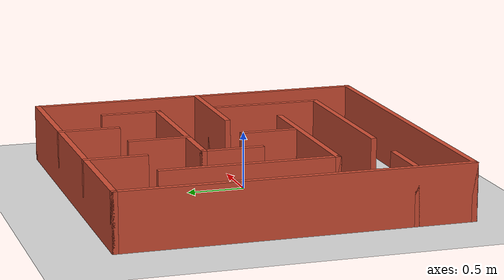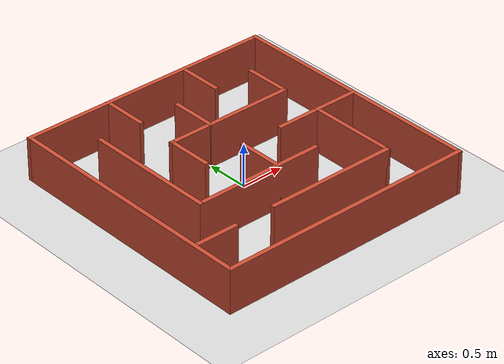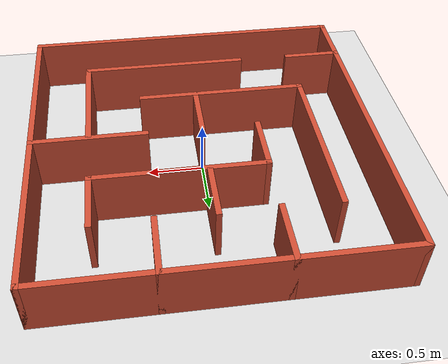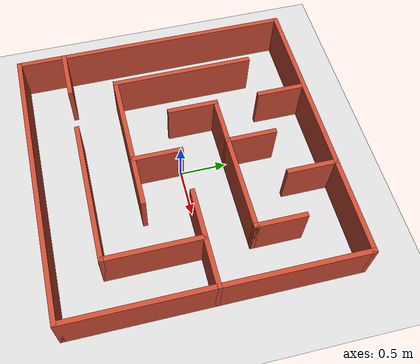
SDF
<?xml version="1.0" ?>
<sdf version="1.8">
  <world name="maze_world">
    <physics name="2ms" type="ode">
      <max_step_size>0.002</max_step_size>
      <real_time_factor>1.0</real_time_factor>
    </physics>
    <plugin filename="gz-sim-physics-system" name="gz::sim::systems::Physics"/>
    <plugin filename="gz-sim-user-commands-system" name="gz::sim::systems::UserCommands"/>
    <plugin filename="gz-sim-scene-broadcaster-system" name="gz::sim::systems::SceneBroadcaster"/>
    <plugin filename="gz-sim-sensors-system" name="gz::sim::systems::Sensors">
      <render_engine>ogre2</render_engine>
    </plugin>
    <plugin filename="gz-sim-imu-system" name="gz::sim::systems::Imu"/>
    <gravity>0 0 -9.8</gravity>
    <scene><ambient>0.6 0.6 0.6 1</ambient><background>0.8 0.8 0.8 1</background><shadows>false</shadows></scene>
    <light type="directional" name="sun">
      <cast_shadows>false</cast_shadows><pose>0 0 10 0 0 0</pose>
      <diffuse>0.9 0.9 0.9 1</diffuse><specular>0.2 0.2 0.2 1</specular>
      <direction>-0.5 0.1 -0.9</direction>
    </light>
    <model name="ground_plane"><static>true</static><link name="link">
      <collision name="c"><geometry><plane><normal>0 0 1</normal><size>10 10</size></plane></geometry></collision>
      <visual name="v"><geometry><plane><normal>0 0 1</normal><size>10 10</size></plane></geometry>
        <material><ambient>0.85 0.85 0.85 1</ambient><diffuse>0.85 0.85 0.85 1</diffuse></material></visual>
    </link></model>
    <model name="maze"><static>true</static><link name="walls">
      <collision name="c0"><pose>0.000 1.500 0.25 0 0 0</pose>
        <geometry><box><size>3.050 0.050 0.5</size></box></geometry></collision>
      <visual name="v0"><pose>0.000 1.500 0.25 0 0 0</pose>
        <geometry><box><size>3.050 0.050 0.5</size></box></geometry>
        <material><ambient>0.8 0.3 0.2 1</ambient><diffuse>0.8 0.3 0.2 1</diffuse></material></visual>
      <collision name="c1"><pose>0.000 -1.500 0.25 0 0 0</pose>
        <geometry><box><size>3.050 0.050 0.5</size></box></geometry></collision>
      <visual name="v1"><pose>0.000 -1.500 0.25 0 0 0</pose>
        <geometry><box><size>3.050 0.050 0.5</size></box></geometry>
        <material><ambient>0.8 0.3 0.2 1</ambient><diffuse>0.8 0.3 0.2 1</diffuse></material></visual>
      <collision name="c2"><pose>-1.500 0.000 0.25 0 0 0</pose>
        <geometry><box><size>0.050 3.050 0.5</size></box></geometry></collision>
      <visual name="v2"><pose>-1.500 0.000 0.25 0 0 0</pose>
        <geometry><box><size>0.050 3.050 0.5</size></box></geometry>
        <material><ambient>0.8 0.3 0.2 1</ambient><diffuse>0.8 0.3 0.2 1</diffuse></material></visual>
      <collision name="c3"><pose>1.500 0.000 0.25 0 0 0</pose>
        <geometry><box><size>0.050 3.050 0.5</size></box></geometry></collision>
      <visual name="v3"><pose>1.500 0.000 0.25 0 0 0</pose>
        <geometry><box><size>0.050 3.050 0.5</size></box></geometry>
        <material><ambient>0.8 0.3 0.2 1</ambient><diffuse>0.8 0.3 0.2 1</diffuse></material></visual>
      <collision name="c4"><pose>-0.500 1.250 0.25 0 0 0</pose>
        <geometry><box><size>0.050 0.550 0.5</size></box></geometry></collision>
      <visual name="v4"><pose>-0.500 1.250 0.25 0 0 0</pose>
        <geometry><box><size>0.050 0.550 0.5</size></box></geometry>
        <material><ambient>0.8 0.3 0.2 1</ambient><diffuse>0.8 0.3 0.2 1</diffuse></material></visual>
      <collision name="c5"><pose>0.500 1.250 0.25 0 0 0</pose>
        <geometry><box><size>0.050 0.550 0.5</size></box></geometry></collision>
      <visual name="v5"><pose>0.500 1.250 0.25 0 0 0</pose>
        <geometry><box><size>0.050 0.550 0.5</size></box></geometry>
        <material><ambient>0.8 0.3 0.2 1</ambient><diffuse>0.8 0.3 0.2 1</diffuse></material></visual>
      <collision name="c6"><pose>-1.000 0.250 0.25 0 0 0</pose>
        <geometry><box><size>0.050 1.550 0.5</size></box></geometry></collision>
      <visual name="v6"><pose>-1.000 0.250 0.25 0 0 0</pose>
        <geometry><box><size>0.050 1.550 0.5</size></box></geometry>
        <material><ambient>0.8 0.3 0.2 1</ambient><diffuse>0.8 0.3 0.2 1</diffuse></material></visual>
      <collision name="c7"><pose>0.000 0.750 0.25 0 0 0</pose>
        <geometry><box><size>0.050 0.550 0.5</size></box></geometry></collision>
      <visual name="v7"><pose>0.000 0.750 0.25 0 0 0</pose>
        <geometry><box><size>0.050 0.550 0.5</size></box></geometry>
        <material><ambient>0.8 0.3 0.2 1</ambient><diffuse>0.8 0.3 0.2 1</diffuse></material></visual>
      <collision name="c8"><pose>1.000 0.750 0.25 0 0 0</pose>
        <geometry><box><size>0.050 0.550 0.5</size></box></geometry></collision>
      <visual name="v8"><pose>1.000 0.750 0.25 0 0 0</pose>
        <geometry><box><size>0.050 0.550 0.5</size></box></geometry>
        <material><ambient>0.8 0.3 0.2 1</ambient><diffuse>0.8 0.3 0.2 1</diffuse></material></visual>
      <collision name="c9"><pose>-0.500 0.250 0.25 0 0 0</pose>
        <geometry><box><size>0.050 0.550 0.5</size></box></geometry></collision>
      <visual name="v9"><pose>-0.500 0.250 0.25 0 0 0</pose>
        <geometry><box><size>0.050 0.550 0.5</size></box></geometry>
        <material><ambient>0.8 0.3 0.2 1</ambient><diffuse>0.8 0.3 0.2 1</diffuse></material></visual>
      <collision name="c10"><pose>0.000 -0.250 0.25 0 0 0</pose>
        <geometry><box><size>0.050 0.550 0.5</size></box></geometry></collision>
      <visual name="v10"><pose>0.000 -0.250 0.25 0 0 0</pose>
        <geometry><box><size>0.050 0.550 0.5</size></box></geometry>
        <material><ambient>0.8 0.3 0.2 1</ambient><diffuse>0.8 0.3 0.2 1</diffuse></material></visual>
      <collision name="c11"><pose>1.000 -0.500 0.25 0 0 0</pose>
        <geometry><box><size>0.050 1.050 0.5</size></box></geometry></collision>
      <visual name="v11"><pose>1.000 -0.500 0.25 0 0 0</pose>
        <geometry><box><size>0.050 1.050 0.5</size></box></geometry>
        <material><ambient>0.8 0.3 0.2 1</ambient><diffuse>0.8 0.3 0.2 1</diffuse></material></visual>
      <collision name="c12"><pose>0.250 0.500 0.25 0 0 0</pose>
        <geometry><box><size>1.550 0.050 0.5</size></box></geometry></collision>
      <visual name="v12"><pose>0.250 0.500 0.25 0 0 0</pose>
        <geometry><box><size>1.550 0.050 0.5</size></box></geometry>
        <material><ambient>0.8 0.3 0.2 1</ambient><diffuse>0.8 0.3 0.2 1</diffuse></material></visual>
      <collision name="c13"><pose>1.000 0.000 0.25 0 0 0</pose>
        <geometry><box><size>1.050 0.050 0.5</size></box></geometry></collision>
      <visual name="v13"><pose>1.000 0.000 0.25 0 0 0</pose>
        <geometry><box><size>1.050 0.050 0.5</size></box></geometry>
        <material><ambient>0.8 0.3 0.2 1</ambient><diffuse>0.8 0.3 0.2 1</diffuse></material></visual>
      <collision name="c14"><pose>-0.250 -0.500 0.25 0 0 0</pose>
        <geometry><box><size>1.550 0.050 0.5</size></box></geometry></collision>
      <visual name="v14"><pose>-0.250 -0.500 0.25 0 0 0</pose>
        <geometry><box><size>1.550 0.050 0.5</size></box></geometry>
        <material><ambient>0.8 0.3 0.2 1</ambient><diffuse>0.8 0.3 0.2 1</diffuse></material></visual>
      <collision name="c15"><pose>-1.250 -1.000 0.25 0 0 0</pose>
        <geometry><box><size>0.550 0.050 0.5</size></box></geometry></collision>
      <visual name="v15"><pose>-1.250 -1.000 0.25 0 0 0</pose>
        <geometry><box><size>0.550 0.050 0.5</size></box></geometry>
        <material><ambient>0.8 0.3 0.2 1</ambient><diffuse>0.8 0.3 0.2 1</diffuse></material></visual>
      <collision name="c16"><pose>0.250 -1.000 0.25 0 0 0</pose>
        <geometry><box><size>1.550 0.050 0.5</size></box></geometry></collision>
      <visual name="v16"><pose>0.250 -1.000 0.25 0 0 0</pose>
        <geometry><box><size>1.550 0.050 0.5</size></box></geometry>
        <material><ambient>0.8 0.3 0.2 1</ambient><diffuse>0.8 0.3 0.2 1</diffuse></material></visual>
    </link></model>
  </world>
</sdf>
